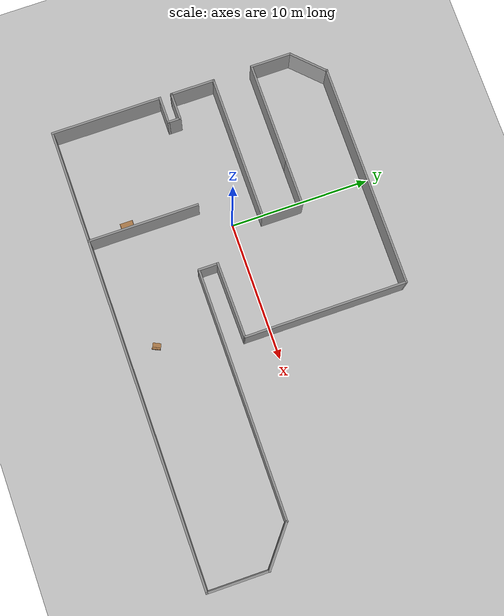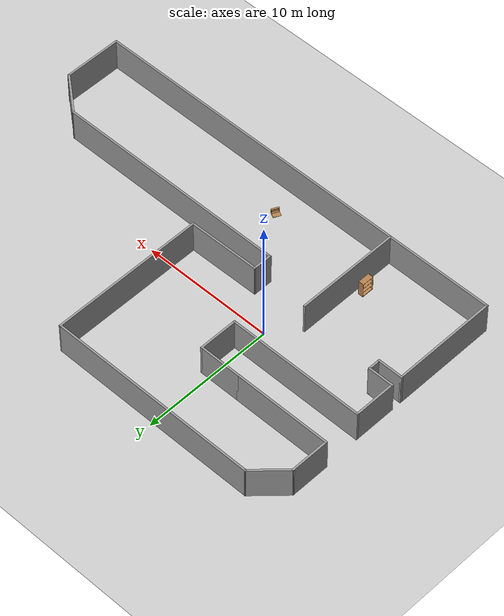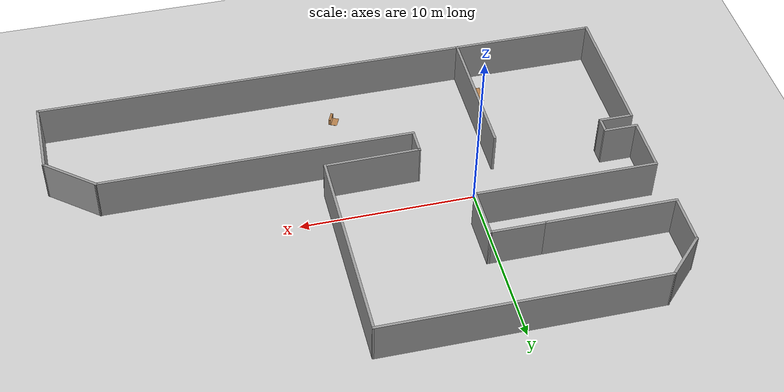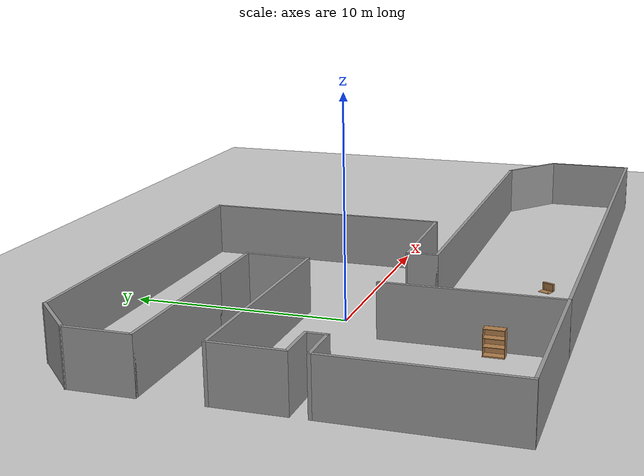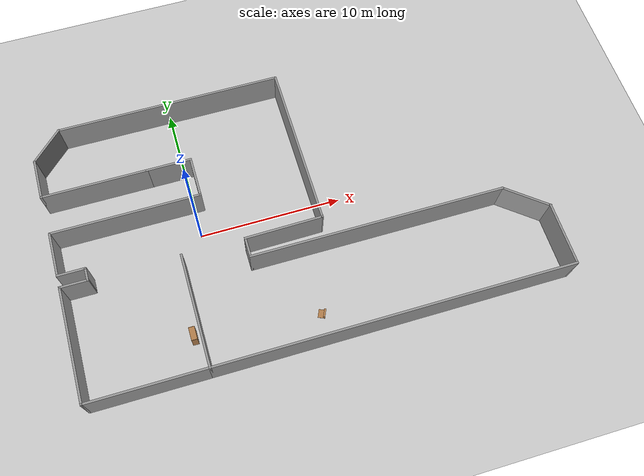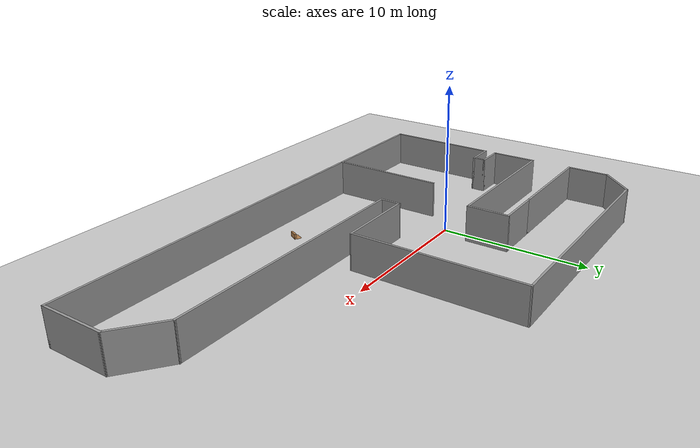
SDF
<sdf version="1.7">
 <world name="default">
  <light name="sun" type="directional">
   <pose>0 0 10 0 -0 0</pose>
   <diffuse>0.8 0.8 0.8 1</diffuse>
   <specular>0.2 0.2 0.2 1</specular>
   <attenuation>
    <range>1000</range>
    <constant>0.9</constant>
    <linear>0.01</linear>
    <quadratic>0.001</quadratic>
   </attenuation>
   <direction>-0.5 0.1 -0.9</direction>
   <spot><inner_angle>0</inner_angle><outer_angle>0</outer_angle><falloff>0</falloff></spot>
  </light>
  <model name="ground_plane">
   <static>1</static>
   <link name="link">
    <collision name="collision">
     <geometry><plane><normal>0 0 1</normal><size>100 100</size></plane></geometry>
     <surface>
      <contact><collide_bitmask>65535</collide_bitmask></contact>
      <friction><ode><mu>100</mu><mu2>50</mu2></ode></friction>
     </surface>
    </collision>
    <visual name="visual">
     <cast_shadows>0</cast_shadows>
     <geometry><plane><normal>0 0 1</normal><size>100 100</size></plane></geometry>
     <material>
      <script><uri>file://media/materials/scripts/gazebo.material</uri><name>Gazebo/Grey</name></script>
     </material>
    </visual>
   </link>
  </model>
  <gravity>0 0 -9.8</gravity>
  <magnetic_field>6e-06 2.3e-05 -4.2e-05</magnetic_field>
  <atmosphere type="adiabatic"/>
  <physics type="ode">
   <max_step_size>0.001</max_step_size>
   <real_time_factor>1</real_time_factor>
   <real_time_update_rate>1000</real_time_update_rate>
  </physics>
  <scene><ambient>0.4 0.4 0.4 1</ambient><background>0.7 0.7 0.7 1</background><shadows>1</shadows></scene>
  <audio><device>default</device></audio>
  <spherical_coordinates>
   <surface_model>EARTH_WGS84</surface_model>
   <latitude_deg>0</latitude_deg>
   <longitude_deg>0</longitude_deg>
   <elevation>0</elevation>
   <heading_deg>0</heading_deg>
  </spherical_coordinates>
  <model name="my_bot">
   <link name="base_link">
    <inertial>
     <pose>0.058676 0 0.043869 0 -0 0</pose>
     <mass>0.701</mass>
     <inertia>
      <ixx>0.00324724</ixx>
      <ixy>0</ixy>
      <ixz>0.000339625</ixz>
      <iyy>0.00355537</iyy>
      <iyz>0</iyz>
      <izz>0.00467089</izz>
     </inertia>
    </inertial>
    <collision name="base_link_fixed_joint_lump__chassis_collision">
     <pose>0.05251 0 0.037505 0 -0 0</pose>
     <geometry><box><size>0.225 0.225 0.07501</size></box></geometry>
    </collision>
    <collision name="base_link_fixed_joint_lump__caster_wheel_collision_1">
     <pose>0.10876 0 0 0 -0 0</pose>
     <geometry><sphere><radius>0.04</radius></sphere></geometry>
     <surface><friction><ode><mu>0.001</mu><mu2>0.001</mu2></ode></friction></surface>
    </collision>
    <collision name="base_link_fixed_joint_lump__laser_frame_collision_2">
     <pose>0.04001 0 0.12 0 -0 0</pose>
     <geometry><cylinder><length>0.025</length><radius>0.04</radius></cylinder></geometry>
    </collision>
    <collision name="base_link_fixed_joint_lump__imu_link_collision_3">
     <geometry><box><size>0.001 0.001 0.001</size></box></geometry>
    </collision>
    <visual name="base_link_fixed_joint_lump__chassis_visual">
     <pose>0.05251 0 0.037505 0 -0 0</pose>
     <geometry><box><size>0.225 0.225 0.07501</size></box></geometry>
     <material>
      <script><name>Gazebo/Blue</name><uri>file://media/materials/scripts/gazebo.material</uri></script>
     </material>
    </visual>
    <visual name="base_link_fixed_joint_lump__camera_link_visual_1">
     <pose>0.14001 0 0.10285 0 -0 0</pose>
     <geometry><box><size>0.005 0.025 0.025</size></box></geometry>
     <material>
      <script><name>Gazebo/Green</name><uri>file://media/materials/scripts/gazebo.material</uri></script>
     </material>
    </visual>
    <visual name="base_link_fixed_joint_lump__caster_wheel_visual_2">
     <pose>0.10876 0 0 0 -0 0</pose>
     <geometry><sphere><radius>0.04</radius></sphere></geometry>
     <material>
      <script><name>Gazebo/White</name><uri>file://media/materials/scripts/gazebo.material</uri></script>
     </material>
    </visual>
    <visual name="base_link_fixed_joint_lump__laser_frame_visual_3">
     <pose>0.04001 0 0.12 0 -0 0</pose>
     <geometry><cylinder><length>0.025</length><radius>0.04</radius></cylinder></geometry>
     <material>
      <script><name>Gazebo/Red</name><uri>file://media/materials/scripts/gazebo.material</uri></script>
     </material>
    </visual>
    <visual name="base_link_fixed_joint_lump__imu_link_visual_4">
     <geometry><box><size>0.001 0.001 0.001</size></box></geometry>
    </visual>
    <sensor name="camera" type="camera">
     <visualize>1</visualize>
     <update_rate>10</update_rate>
     <camera>
      <horizontal_fov>1.089</horizontal_fov>
      <image><format>R8G8B8</format><width>640</width><height>480</height></image>
      <clip><near>0.05</near><far>8</far></clip>
     </camera>
     <plugin name="camera_controller" filename="libgazebo_ros_camera.so">
      <frame_name>camera_link_optical</frame_name>
     </plugin>
     <pose>0.14001 0 0.10285 0 -0 0</pose>
    </sensor>
    <sensor name="laser" type="ray">
     <visualize>0</visualize>
     <update_rate>10</update_rate>
     <ray>
      <scan>
       <horizontal>
        <samples>360</samples>
        <min_angle>-3.14</min_angle>
        <max_angle>3.14</max_angle>
        <resolution>1</resolution>
       </horizontal>
       <vertical><samples>1</samples><min_angle>0</min_angle><max_angle>0</max_angle></vertical>
      </scan>
      <range><min>0.3</min><max>12</max></range>
     </ray>
     <plugin name="laser_controller" filename="libgazebo_ros_ray_sensor.so">
      <ros><argument>~/out:=scan</argument></ros>
      <output_type>sensor_msgs/LaserScan</output_type>
      <frame_name>laser_frame</frame_name>
     </plugin>
     <pose>0.04001 0 0.12 0 -0 0</pose>
    </sensor>
    <sensor name="imu_sensor" type="imu">
     <plugin name="imu_plugin" filename="libgazebo_ros_imu_sensor.so">
      <initial_orientation_as_reference>0</initial_orientation_as_reference>
      <frame_name>imu_link</frame_name>
      <ros><namespace>/imu</namespace><remapping>~/out:=data</remapping></ros>
     </plugin>
     <always_on>1</always_on>
     <update_rate>100</update_rate>
     <visualize>1</visualize>
     <imu>
      <angular_velocity>
       <x>
        <noise type="gaussian">
         <mean>0</mean>
         <stddev>0.0002</stddev>
         <bias_mean>7.5e-06</bias_mean>
         <bias_stddev>8e-07</bias_stddev>
        </noise>
       </x>
       <y>
        <noise type="gaussian">
         <mean>0</mean>
         <stddev>0.0002</stddev>
         <bias_mean>7.5e-06</bias_mean>
         <bias_stddev>8e-07</bias_stddev>
        </noise>
       </y>
       <z>
        <noise type="gaussian">
         <mean>0</mean>
         <stddev>0.0002</stddev>
         <bias_mean>7.5e-06</bias_mean>
         <bias_stddev>8e-07</bias_stddev>
        </noise>
       </z>
      </angular_velocity>
      <linear_acceleration>
       <x>
        <noise type="gaussian">
         <mean>0</mean>
         <stddev>0.017</stddev>
         <bias_mean>0.1</bias_mean>
         <bias_stddev>0.001</bias_stddev>
        </noise>
       </x>
       <y>
        <noise type="gaussian">
         <mean>0</mean>
         <stddev>0.017</stddev>
         <bias_mean>0.1</bias_mean>
         <bias_stddev>0.001</bias_stddev>
        </noise>
       </y>
       <z>
        <noise type="gaussian">
         <mean>0</mean>
         <stddev>0.017</stddev>
         <bias_mean>0.1</bias_mean>
         <bias_stddev>0.001</bias_stddev>
        </noise>
       </z>
      </linear_acceleration>
     </imu>
    </sensor>
   </link>
   <joint name="left_wheel_joint" type="revolute">
    <pose relative_to="base_link">0 0.11975 0 -1.5708 0 0</pose>
    <parent>base_link</parent>
    <child>left_wheel</child>
    <axis>
     <xyz>0 0 1</xyz>
     <limit><lower>-1e+16</lower><upper>1e+16</upper></limit>
     <dynamics><spring_reference>0</spring_reference><spring_stiffness>0</spring_stiffness></dynamics>
    </axis>
   </joint>
   <link name="left_wheel">
    <pose relative_to="left_wheel_joint">0 0 0 0 -0 0</pose>
    <inertial>
     <mass>0.1</mass>
     <inertia>
      <ixx>4.08333e-05</ixx>
      <ixy>0</ixy>
      <ixz>0</ixz>
      <iyy>4.08333e-05</iyy>
      <iyz>0</iyz>
      <izz>8e-05</izz>
     </inertia>
    </inertial>
    <collision name="left_wheel_collision">
     <geometry><cylinder><length>0.01</length><radius>0.04</radius></cylinder></geometry>
    </collision>
    <visual name="left_wheel_visual">
     <geometry><cylinder><length>0.01</length><radius>0.04</radius></cylinder></geometry>
     <material>
      <script><name>Gazebo/Black</name><uri>file://media/materials/scripts/gazebo.material</uri></script>
     </material>
    </visual>
   </link>
   <joint name="right_wheel_joint" type="revolute">
    <pose relative_to="base_link">0 -0.11975 0 1.5708 -0 0</pose>
    <parent>base_link</parent>
    <child>right_wheel</child>
    <axis>
     <xyz>0 0 -1</xyz>
     <limit><lower>-1e+16</lower><upper>1e+16</upper></limit>
     <dynamics><spring_reference>0</spring_reference><spring_stiffness>0</spring_stiffness></dynamics>
    </axis>
   </joint>
   <link name="right_wheel">
    <pose relative_to="right_wheel_joint">0 0 0 0 -0 0</pose>
    <inertial>
     <mass>0.1</mass>
     <inertia>
      <ixx>4.08333e-05</ixx>
      <ixy>0</ixy>
      <ixz>0</ixz>
      <iyy>4.08333e-05</iyy>
      <iyz>0</iyz>
      <izz>8e-05</izz>
     </inertia>
    </inertial>
    <collision name="right_wheel_collision">
     <geometry><cylinder><length>0.01</length><radius>0.04</radius></cylinder></geometry>
    </collision>
    <visual name="right_wheel_visual">
     <geometry><cylinder><length>0.01</length><radius>0.04</radius></cylinder></geometry>
     <material>
      <script><name>Gazebo/Black</name><uri>file://media/materials/scripts/gazebo.material</uri></script>
     </material>
    </visual>
   </link>
   <static>0</static>
   <plugin name="gazebo_ros2_control" filename="libgazebo_ros2_control.so">
    <parameters>/home/praveenrav702/comp_ws/install/autonomous_diffdrive_robot/share/autonomous_diffdrive_robot/config/my_controllers.yaml</parameters>
    <parameters>/home/praveenrav702/comp_ws/install/autonomous_diffdrive_robot/share/autonomous_diffdrive_robot/config/gaz_ros2_ctl_use_sim.yaml</parameters>
   </plugin>
   <pose>0.001982 0.00016 0.04 0 -0 0.018036</pose>
  </model>
  <model name="Simulated_Room">
   <pose>6.69498 -0.068758 0 0 -0 0</pose>
   <link name="Wall_16">
    <collision name="Wall_16_Collision">
     <geometry><box><size>5.53474 0.15 2.5</size></box></geometry>
     <pose>0 0 1.25 0 -0 0</pose>
    </collision>
    <visual name="Wall_16_Visual">
     <pose>0 0 1.25 0 -0 0</pose>
     <geometry><box><size>5.53474 0.15 2.5</size></box></geometry>
     <material>
      <script><uri>file://media/materials/scripts/gazebo.material</uri><name>Gazebo/Grey</name></script>
      <ambient>1 1 1 1</ambient>
     </material>
     <meta><layer>0</layer></meta>
    </visual>
    <pose>-1.27102 -1.91769 0 0 -0 0.012742</pose>
   </link>
   <link name="Wall_37">
    <collision name="Wall_37_Collision">
     <geometry><box><size>1.5 0.15 2.5</size></box></geometry>
     <pose>0 0 1.25 0 -0 0</pose>
    </collision>
    <visual name="Wall_37_Visual">
     <pose>0 0 1.25 0 -0 0</pose>
     <geometry><box><size>1.5 0.15 2.5</size></box></geometry>
     <material>
      <script><uri>file://media/materials/scripts/gazebo.material</uri><name>Gazebo/Grey</name></script>
      <ambient>1 1 1 1</ambient>
     </material>
     <meta><layer>0</layer></meta>
    </visual>
    <pose>-3.96317 -2.627 0 0 -0 -1.5708</pose>
   </link>
   <link name="Wall_38">
    <collision name="Wall_38_Collision">
     <geometry><box><size>18 0.15 2.5</size></box></geometry>
     <pose>0 0 1.25 0 -0 0</pose>
    </collision>
    <visual name="Wall_38_Visual">
     <pose>0 0 1.25 0 -0 0</pose>
     <geometry><box><size>18 0.15 2.5</size></box></geometry>
     <material>
      <script><uri>file://media/materials/scripts/gazebo.material</uri><name>Gazebo/Grey</name></script>
      <ambient>1 1 1 1</ambient>
     </material>
     <meta><layer>0</layer></meta>
    </visual>
    <pose>4.96183 -3.302 0 0 -0 0</pose>
   </link>
   <link name="Wall_46">
    <collision name="Wall_46_Collision">
     <geometry><box><size>11.75 0.15 2.5</size></box></geometry>
     <pose>0 0 1.25 0 -0 0</pose>
    </collision>
    <visual name="Wall_46_Visual">
     <pose>0 0 1.25 0 -0 0</pose>
     <geometry><box><size>11.75 0.15 2.5</size></box></geometry>
     <material>
      <script><uri>file://media/materials/scripts/gazebo.material</uri><name>Gazebo/Grey</name></script>
      <ambient>1 1 1 1</ambient>
     </material>
     <meta><layer>0</layer></meta>
    </visual>
    <pose>1.42113 3.91661 0 0 -0 1.5708</pose>
   </link>
   <link name="Wall_47">
    <collision name="Wall_47_Collision">
     <geometry><box><size>16.0806 0.15 2.5</size></box></geometry>
     <pose>0 0 1.25 0 -0 0</pose>
    </collision>
    <visual name="Wall_47_Visual">
     <pose>0 0 1.25 0 -0 0</pose>
     <geometry><box><size>16.0806 0.15 2.5</size></box></geometry>
     <material>
      <script><uri>file://media/materials/scripts/gazebo.material</uri><name>Gazebo/Grey</name></script>
      <ambient>1 1 1 1</ambient>
     </material>
     <meta><layer>0</layer></meta>
    </visual>
    <pose>-6.54415 9.72935 0 0 -0 3.13999</pose>
   </link>
   <link name="Wall_51">
    <collision name="Wall_51_Collision">
     <geometry><box><size>3 0.15 2.5</size></box></geometry>
     <pose>0 0 1.25 0 -0 0</pose>
    </collision>
    <visual name="Wall_51_Visual">
     <pose>0 0 1.25 0 -0 0</pose>
     <geometry><box><size>3 0.15 2.5</size></box></geometry>
     <material>
      <script><uri>file://media/materials/scripts/gazebo.material</uri><name>Gazebo/Grey</name></script>
      <ambient>1 1 1 1</ambient>
     </material>
     <meta><layer>0</layer></meta>
    </visual>
    <pose>-15.5171 8.73447 0 0 -0 -2.35619</pose>
   </link>
   <link name="Wall_52">
    <collision name="Wall_52_Collision">
     <geometry><box><size>3 0.15 2.5</size></box></geometry>
     <pose>0 0 1.25 0 -0 0</pose>
    </collision>
    <visual name="Wall_52_Visual">
     <pose>0 0 1.25 0 -0 0</pose>
     <geometry><box><size>3 0.15 2.5</size></box></geometry>
     <material>
      <script><uri>file://media/materials/scripts/gazebo.material</uri><name>Gazebo/Grey</name></script>
      <ambient>1 1 1 1</ambient>
     </material>
     <meta><layer>0</layer></meta>
    </visual>
    <pose>-16.5247 6.30184 0 0 -0 -1.5708</pose>
   </link>
   <link name="Wall_53">
    <collision name="Wall_53_Collision">
     <geometry><box><size>7.5 0.15 2.5</size></box></geometry>
     <pose>0 0 1.25 0 -0 0</pose>
    </collision>
    <visual name="Wall_53_Visual">
     <pose>0 0 1.25 0 -0 0</pose>
     <geometry><box><size>7.5 0.15 2.5</size></box></geometry>
     <material>
      <script><uri>file://media/materials/scripts/gazebo.material</uri><name>Gazebo/Grey</name></script>
      <ambient>1 1 1 1</ambient>
     </material>
     <meta><layer>0</layer></meta>
    </visual>
    <pose>-12.8497 4.87684 0 0 -0 0</pose>
   </link>
   <link name="Wall_54">
    <collision name="Wall_54_Collision">
     <geometry><box><size>3.25 0.15 2.5</size></box></geometry>
     <pose>0 0 1.25 0 -0 0</pose>
    </collision>
    <visual name="Wall_54_Visual">
     <pose>0 0 1.25 0 -0 0</pose>
     <geometry><box><size>3.25 0.15 2.5</size></box></geometry>
     <material>
      <script><uri>file://media/materials/scripts/gazebo.material</uri><name>Gazebo/Grey</name></script>
      <ambient>1 1 1 1</ambient>
     </material>
     <meta><layer>0</layer></meta>
    </visual>
    <pose>-7.62469 4.87684 0 0 -0 0</pose>
   </link>
   <link name="Wall_71">
    <collision name="Wall_71_Collision">
     <geometry><box><size>3 0.15 2.5</size></box></geometry>
     <pose>0 0 1.25 0 -0 0</pose>
    </collision>
    <visual name="Wall_71_Visual">
     <pose>0 0 1.25 0 -0 0</pose>
     <geometry><box><size>3 0.15 2.5</size></box></geometry>
     <material>
      <script><uri>file://media/materials/scripts/gazebo.material</uri><name>Gazebo/Grey</name></script>
      <ambient>1 1 1 1</ambient>
     </material>
     <meta><layer>0</layer></meta>
    </visual>
    <pose>-6.07469 3.45184 0 0 -0 -1.5708</pose>
   </link>
   <link name="Wall_72">
    <collision name="Wall_72_Collision">
     <geometry><box><size>10.5 0.15 2.5</size></box></geometry>
     <pose>0 0 1.25 0 -0 0</pose>
    </collision>
    <visual name="Wall_72_Visual">
     <pose>0 0 1.25 0 -0 0</pose>
     <geometry><box><size>10.5 0.15 2.5</size></box></geometry>
     <material>
      <script><uri>file://media/materials/scripts/gazebo.material</uri><name>Gazebo/Grey</name></script>
      <ambient>1 1 1 1</ambient>
     </material>
     <meta><layer>0</layer></meta>
    </visual>
    <pose>-11.2497 2.02684 0 0 -0 3.14159</pose>
   </link>
   <link name="Wall_73">
    <collision name="Wall_73_Collision">
     <geometry><box><size>3.25 0.15 2.5</size></box></geometry>
     <pose>0 0 1.25 0 -0 0</pose>
    </collision>
    <visual name="Wall_73_Visual">
     <pose>0 0 1.25 0 -0 0</pose>
     <geometry><box><size>3.25 0.15 2.5</size></box></geometry>
     <material>
      <script><uri>file://media/materials/scripts/gazebo.material</uri><name>Gazebo/Grey</name></script>
      <ambient>1 1 1 1</ambient>
     </material>
     <meta><layer>0</layer></meta>
    </visual>
    <pose>-16.4247 0.47684 0 0 -0 -1.5708</pose>
   </link>
   <link name="Wall_74">
    <collision name="Wall_74_Collision">
     <geometry><box><size>2 0.15 2.5</size></box></geometry>
     <pose>0 0 1.25 0 -0 0</pose>
    </collision>
    <visual name="Wall_74_Visual">
     <pose>0 0 1.25 0 -0 0</pose>
     <geometry><box><size>2 0.15 2.5</size></box></geometry>
     <material>
      <script><uri>file://media/materials/scripts/gazebo.material</uri><name>Gazebo/Grey</name></script>
      <ambient>1 1 1 1</ambient>
     </material>
     <meta><layer>0</layer></meta>
    </visual>
    <pose>-15.4997 -1.07316 0 0 -0 0</pose>
   </link>
   <link name="Wall_75">
    <collision name="Wall_75_Collision">
     <geometry><box><size>1 0.15 2.5</size></box></geometry>
     <pose>0 0 1.25 0 -0 0</pose>
    </collision>
    <visual name="Wall_75_Visual">
     <pose>0 0 1.25 0 -0 0</pose>
     <geometry><box><size>1 0.15 2.5</size></box></geometry>
     <material>
      <script><uri>file://media/materials/scripts/gazebo.material</uri><name>Gazebo/Grey</name></script>
      <ambient>1 1 1 1</ambient>
     </material>
     <meta><layer>0</layer></meta>
    </visual>
    <pose>-14.5747 -1.49816 0 0 -0 -1.5708</pose>
   </link>
   <link name="Wall_76">
    <collision name="Wall_76_Collision">
     <geometry><box><size>2 0.15 2.5</size></box></geometry>
     <pose>0 0 1.25 0 -0 0</pose>
    </collision>
    <visual name="Wall_76_Visual">
     <pose>0 0 1.25 0 -0 0</pose>
     <geometry><box><size>2 0.15 2.5</size></box></geometry>
     <material>
      <script><uri>file://media/materials/scripts/gazebo.material</uri><name>Gazebo/Grey</name></script>
      <ambient>1 1 1 1</ambient>
     </material>
     <meta><layer>0</layer></meta>
    </visual>
    <pose>-15.4997 -1.92316 0 0 -0 3.14159</pose>
   </link>
   <link name="Wall_77">
    <collision name="Wall_77_Collision">
     <geometry><box><size>8 0.15 2.5</size></box></geometry>
     <pose>0 0 1.25 0 -0 0</pose>
    </collision>
    <visual name="Wall_77_Visual">
     <pose>0 0 1.25 0 -0 0</pose>
     <geometry><box><size>8 0.15 2.5</size></box></geometry>
     <material>
      <script><uri>file://media/materials/scripts/gazebo.material</uri><name>Gazebo/Grey</name></script>
      <ambient>1 1 1 1</ambient>
     </material>
     <meta><layer>0</layer></meta>
    </visual>
    <pose>-16.4247 -5.84816 0 0 -0 -1.5708</pose>
   </link>
   <link name="Wall_78">
    <collision name="Wall_78_Collision">
     <geometry><box><size>8.25 0.15 2.5</size></box></geometry>
     <pose>0 0 1.25 0 -0 0</pose>
    </collision>
    <visual name="Wall_78_Visual">
     <pose>0 0 1.25 0 -0 0</pose>
     <geometry><box><size>8.25 0.15 2.5</size></box></geometry>
     <material>
      <script><uri>file://media/materials/scripts/gazebo.material</uri><name>Gazebo/Grey</name></script>
      <ambient>1 1 1 1</ambient>
     </material>
     <meta><layer>0</layer></meta>
    </visual>
    <pose>-12.3747 -9.77316 0 0 -0 0</pose>
   </link>
   <link name="Wall_79">
    <collision name="Wall_79_Collision">
     <geometry><box><size>8 0.15 2.5</size></box></geometry>
     <pose>0 0 1.25 0 -0 0</pose>
    </collision>
    <visual name="Wall_79_Visual">
     <pose>0 0 1.25 0 -0 0</pose>
     <geometry><box><size>8 0.15 2.5</size></box></geometry>
     <material>
      <script><uri>file://media/materials/scripts/gazebo.material</uri><name>Gazebo/Grey</name></script>
      <ambient>1 1 1 1</ambient>
     </material>
     <meta><layer>0</layer></meta>
    </visual>
    <pose>-8.32469 -5.84816 0 0 -0 1.5708</pose>
   </link>
   <link name="Wall_88">
    <collision name="Wall_88_Collision">
     <geometry><box><size>25 0.15 2.5</size></box></geometry>
     <pose>0 0 1.25 0 -0 0</pose>
    </collision>
    <visual name="Wall_88_Visual">
     <pose>0 0 1.25 0 -0 0</pose>
     <geometry><box><size>25 0.15 2.5</size></box></geometry>
     <material>
      <script><uri>file://media/materials/scripts/gazebo.material</uri><name>Gazebo/Grey</name></script>
      <ambient>1 1 1 1</ambient>
     </material>
     <meta><layer>0</layer></meta>
    </visual>
    <pose>4.10031 -9.77316 0 0 -0 0</pose>
   </link>
   <link name="Wall_91">
    <collision name="Wall_91_Collision">
     <geometry><box><size>4.5 0.15 2.5</size></box></geometry>
     <pose>0 0 1.25 0 -0 0</pose>
    </collision>
    <visual name="Wall_91_Visual">
     <pose>0 0 1.25 0 -0 0</pose>
     <geometry><box><size>4.5 0.15 2.5</size></box></geometry>
     <material>
      <script><uri>file://media/materials/scripts/gazebo.material</uri><name>Gazebo/Grey</name></script>
      <ambient>1 1 1 1</ambient>
     </material>
     <meta><layer>0</layer></meta>
    </visual>
    <pose>16.5253 -7.59816 0 0 -0 1.5708</pose>
   </link>
   <link name="Wall_92">
    <collision name="Wall_92_Collision">
     <geometry><box><size>3.5354 0.15 2.5</size></box></geometry>
     <pose>0 0 1.25 0 -0 0</pose>
    </collision>
    <visual name="Wall_92_Visual">
     <pose>0 0 1.25 0 -0 0</pose>
     <geometry><box><size>3.5354 0.15 2.5</size></box></geometry>
     <material>
      <script><uri>file://media/materials/scripts/gazebo.material</uri><name>Gazebo/Grey</name></script>
      <ambient>1 1 1 1</ambient>
     </material>
     <meta><layer>0</layer></meta>
    </visual>
    <pose>15.2061 -4.36258 0 0 -0 2.46446</pose>
   </link>
   <static>1</static>
  </model>
  <model name="Bookshelf">
   <static>1</static>
   <link name="link">
    <inertial><mass>1</mass></inertial>
    <collision name="back">
     <pose>0 0.005 0.6 0 -0 0</pose>
     <geometry><box><size>0.9 0.01 1.2</size></box></geometry>
    </collision>
    <visual name="visual1">
     <pose>0 0.005 0.6 0 -0 0</pose>
     <geometry><box><size>0.9 0.01 1.2</size></box></geometry>
     <material>
      <diffuse>1 1 1 1</diffuse>
      <script><uri>file://media/materials/scripts/gazebo.material</uri><name>Gazebo/Wood</name></script>
      <pbr>
       <metal>
        <albedo_map>https://fuel.ignitionrobotics.org/1.0/openrobotics/models/bookshelf/3/files/bookshelf_diffuse.jpg</albedo_map>
       </metal>
      </pbr>
     </material>
    </visual>
    <collision name="left_side">
     <pose>0.45 -0.195 0.6 0 -0 0</pose>
     <geometry><box><size>0.02 0.4 1.2</size></box></geometry>
    </collision>
    <visual name="visual2">
     <pose>0.45 -0.195 0.6 0 -0 0</pose>
     <geometry><box><size>0.02 0.4 1.2</size></box></geometry>
     <material>
      <diffuse>1 1 1 1</diffuse>
      <script><uri>file://media/materials/scripts/gazebo.material</uri><name>Gazebo/Wood</name></script>
      <pbr>
       <metal>
        <albedo_map>https://fuel.ignitionrobotics.org/1.0/openrobotics/models/bookshelf/3/files/bookshelf_diffuse.jpg</albedo_map>
       </metal>
      </pbr>
     </material>
    </visual>
    <collision name="right_side">
     <pose>-0.45 -0.195 0.6 0 -0 0</pose>
     <geometry><box><size>0.02 0.4 1.2</size></box></geometry>
    </collision>
    <visual name="visual3">
     <pose>-0.45 -0.195 0.6 0 -0 0</pose>
     <geometry><box><size>0.02 0.4 1.2</size></box></geometry>
     <material>
      <diffuse>1 1 1 1</diffuse>
      <script><uri>file://media/materials/scripts/gazebo.material</uri><name>Gazebo/Wood</name></script>
      <pbr>
       <metal>
        <albedo_map>https://fuel.ignitionrobotics.org/1.0/openrobotics/models/bookshelf/3/files/bookshelf_diffuse.jpg</albedo_map>
       </metal>
      </pbr>
     </material>
    </visual>
    <collision name="bottom">
     <pose>0 -0.195 0.03 0 -0 0</pose>
     <geometry><box><size>0.88 0.4 0.06</size></box></geometry>
    </collision>
    <visual name="visual4">
     <pose>0 -0.195 0.03 0 -0 0</pose>
     <geometry><box><size>0.88 0.4 0.06</size></box></geometry>
     <material>
      <diffuse>1 1 1 1</diffuse>
      <script><uri>file://media/materials/scripts/gazebo.material</uri><name>Gazebo/Wood</name></script>
      <pbr>
       <metal>
        <albedo_map>https://fuel.ignitionrobotics.org/1.0/openrobotics/models/bookshelf/3/files/bookshelf_diffuse.jpg</albedo_map>
       </metal>
      </pbr>
     </material>
    </visual>
    <collision name="top">
     <pose>0 -0.195 1.19 0 -0 0</pose>
     <geometry><box><size>0.88 0.4 0.02</size></box></geometry>
    </collision>
    <visual name="visual5">
     <pose>0 -0.195 1.19 0 -0 0</pose>
     <geometry><box><size>0.88 0.4 0.02</size></box></geometry>
     <material>
      <diffuse>1 1 1 1</diffuse>
      <script><uri>file://media/materials/scripts/gazebo.material</uri><name>Gazebo/Wood</name></script>
      <pbr>
       <metal>
        <albedo_map>https://fuel.ignitionrobotics.org/1.0/openrobotics/models/bookshelf/3/files/bookshelf_diffuse.jpg</albedo_map>
       </metal>
      </pbr>
     </material>
    </visual>
    <collision name="low_shelf">
     <pose>0 -0.195 0.43 0 -0 0</pose>
     <geometry><box><size>0.88 0.4 0.02</size></box></geometry>
    </collision>
    <visual name="visual6">
     <pose>0 -0.195 0.43 0 -0 0</pose>
     <geometry><box><size>0.88 0.4 0.02</size></box></geometry>
     <material>
      <diffuse>1 1 1 1</diffuse>
      <script><uri>file://media/materials/scripts/gazebo.material</uri><name>Gazebo/Wood</name></script>
      <pbr>
       <metal>
        <albedo_map>https://fuel.ignitionrobotics.org/1.0/openrobotics/models/bookshelf/3/files/bookshelf_diffuse.jpg</albedo_map>
       </metal>
      </pbr>
     </material>
    </visual>
    <collision name="high_shelf">
     <pose>0 -0.195 0.8 0 -0 0</pose>
     <geometry><box><size>0.88 0.4 0.02</size></box></geometry>
    </collision>
    <visual name="visual7">
     <pose>0 -0.195 0.8 0 -0 0</pose>
     <geometry><box><size>0.88 0.4 0.02</size></box></geometry>
     <material>
      <diffuse>1 1 1 1</diffuse>
      <script><uri>file://media/materials/scripts/gazebo.material</uri><name>Gazebo/Wood</name></script>
      <pbr>
       <metal>
        <albedo_map>https://fuel.ignitionrobotics.org/1.0/openrobotics/models/bookshelf/3/files/bookshelf_diffuse.jpg</albedo_map>
       </metal>
      </pbr>
     </material>
    </visual>
   </link>
   <pose>-2 -7 0 0 -0 -1.57079</pose>
  </model>
  <model name="wooden_case_metal_peg">
   <frame name="wooden_case::__model__" attached_to="wooden_case::base">
    <pose relative_to="__model__">0 0 0 0 -0 0</pose>
   </frame>
   <link name="wooden_case::base">
    <pose relative_to="wooden_case::__model__">0 0 0.024 0 -0 0</pose>
    <inertial>
     <pose>-0.022184 0 0.171592 0 -0 0</pose>
     <mass>3.96264</mass>
     <inertia>
      <ixx>0.213536</ixx>
      <ixy>0</ixy>
      <ixz>0.000779377</ixz>
      <iyy>0.0708943</iyy>
      <iyz>0</iyz>
      <izz>0.154604</izz>
     </inertia>
    </inertial>
    <collision name="collision_back">
     <pose>-0.053975 0 0.1778 0 -0 0</pose>
     <geometry><box><size>0.01905 0.5461 0.3175</size></box></geometry>
     <surface>
      <contact>
       <poissons_ratio>0.347</poissons_ratio>
       <elastic_modulus>8.8e+09</elastic_modulus>
       <ode><kp>100000</kp><kd>100</kd><max_vel>100</max_vel><min_depth>0.001</min_depth></ode>
      </contact>
      <friction>
       <torsional>
        <coefficient>1</coefficient>
        <use_patch_radius>0</use_patch_radius>
        <surface_radius>0.01</surface_radius>
       </torsional>
      </friction>
     </surface>
    </collision>
    <visual name="visual_back">
     <pose>-0.053975 0 0.1778 0 -0 0</pose>
     <geometry><box><size>0.01905 0.5461 0.3175</size></box></geometry>
     <material>
      <script><uri>file://media/materials/scripts/gazebo.material</uri><name>Gazebo/Wood</name></script>
     </material>
    </visual>
    <collision name="collision_bottom">
     <pose>0 0 0.009525 0 -0 0</pose>
     <geometry><box><size>0.127 0.5842 0.01905</size></box></geometry>
     <surface>
      <contact>
       <poissons_ratio>0.347</poissons_ratio>
       <elastic_modulus>8.8e+09</elastic_modulus>
       <ode><kp>100000</kp><kd>100</kd><max_vel>100</max_vel><min_depth>0.001</min_depth></ode>
      </contact>
      <friction>
       <torsional>
        <coefficient>1</coefficient>
        <use_patch_radius>0</use_patch_radius>
        <surface_radius>0.01</surface_radius>
       </torsional>
      </friction>
     </surface>
    </collision>
    <visual name="visual_bottom">
     <pose>0 0 0.009525 0 -0 0</pose>
     <geometry><box><size>0.127 0.5842 0.01905</size></box></geometry>
     <material>
      <script><uri>file://media/materials/scripts/gazebo.material</uri><name>Gazebo/Wood</name></script>
     </material>
    </visual>
    <collision name="collision_top">
     <pose>0 0 0.346075 0 -0 0</pose>
     <geometry><box><size>0.127 0.5842 0.01905</size></box></geometry>
     <surface>
      <contact>
       <poissons_ratio>0.347</poissons_ratio>
       <elastic_modulus>8.8e+09</elastic_modulus>
       <ode><kp>100000</kp><kd>100</kd><max_vel>100</max_vel><min_depth>0.001</min_depth></ode>
      </contact>
      <friction>
       <torsional>
        <coefficient>1</coefficient>
        <use_patch_radius>0</use_patch_radius>
        <surface_radius>0.01</surface_radius>
       </torsional>
      </friction>
     </surface>
    </collision>
    <visual name="visual_top">
     <pose>0 0 0.346075 0 -0 0</pose>
     <geometry><box><size>0.127 0.5842 0.01905</size></box></geometry>
     <material>
      <script><uri>file://media/materials/scripts/gazebo.material</uri><name>Gazebo/Wood</name></script>
     </material>
    </visual>
    <collision name="collision_left">
     <pose>0 -0.282575 0.1778 0 -0 0</pose>
     <geometry><box><size>0.127 0.01905 0.3175</size></box></geometry>
     <surface>
      <contact>
       <poissons_ratio>0.347</poissons_ratio>
       <elastic_modulus>8.8e+09</elastic_modulus>
       <ode><kp>100000</kp><kd>100</kd><max_vel>100</max_vel><min_depth>0.001</min_depth></ode>
      </contact>
      <friction>
       <torsional>
        <coefficient>1</coefficient>
        <use_patch_radius>0</use_patch_radius>
        <surface_radius>0.01</surface_radius>
       </torsional>
      </friction>
     </surface>
    </collision>
    <visual name="visual_left">
     <pose>0 -0.282575 0.1778 0 -0 0</pose>
     <geometry><box><size>0.127 0.01905 0.3175</size></box></geometry>
     <material>
      <script><uri>file://media/materials/scripts/gazebo.material</uri><name>Gazebo/Wood</name></script>
     </material>
    </visual>
    <collision name="collision_right">
     <pose>0 0.282575 0.1778 0 -0 0</pose>
     <geometry><box><size>0.127 0.01905 0.3175</size></box></geometry>
     <surface>
      <contact>
       <poissons_ratio>0.347</poissons_ratio>
       <elastic_modulus>8.8e+09</elastic_modulus>
       <ode><kp>100000</kp><kd>100</kd><max_vel>100</max_vel><min_depth>0.001</min_depth></ode>
      </contact>
      <friction>
       <torsional>
        <coefficient>1</coefficient>
        <use_patch_radius>0</use_patch_radius>
        <surface_radius>0.01</surface_radius>
       </torsional>
      </friction>
     </surface>
    </collision>
    <visual name="visual_right">
     <pose>0 0.282575 0.1778 0 -0 0</pose>
     <geometry><box><size>0.127 0.01905 0.3175</size></box></geometry>
     <material>
      <script><uri>file://media/materials/scripts/gazebo.material</uri><name>Gazebo/Wood</name></script>
     </material>
    </visual>
    <collision name="collision_block_left">
     <pose>0.0095 -0.2151 -0.012 0 -0 0</pose>
     <geometry><box><size>0.108 0.05 0.024</size></box></geometry>
     <surface>
      <contact>
       <poissons_ratio>0.347</poissons_ratio>
       <elastic_modulus>8.8e+09</elastic_modulus>
       <ode><kp>100000</kp><kd>100</kd><max_vel>100</max_vel><min_depth>0.001</min_depth></ode>
      </contact>
      <friction>
       <torsional>
        <coefficient>1</coefficient>
        <use_patch_radius>0</use_patch_radius>
        <surface_radius>0.01</surface_radius>
       </torsional>
      </friction>
     </surface>
    </collision>
    <visual name="visual_block_left">
     <pose>0.0095 -0.2151 -0.012 0 -0 0</pose>
     <geometry><box><size>0.108 0.05 0.024</size></box></geometry>
     <material>
      <script><uri>file://media/materials/scripts/gazebo.material</uri><name>Gazebo/Wood</name></script>
     </material>
    </visual>
    <collision name="collision_block_right">
     <pose>0.0095 0.2151 -0.012 0 -0 0</pose>
     <geometry><box><size>0.108 0.05 0.024</size></box></geometry>
     <surface>
      <contact>
       <poissons_ratio>0.347</poissons_ratio>
       <elastic_modulus>8.8e+09</elastic_modulus>
       <ode><kp>100000</kp><kd>100</kd><max_vel>100</max_vel><min_depth>0.001</min_depth></ode>
      </contact>
      <friction>
       <torsional>
        <coefficient>1</coefficient>
        <use_patch_radius>0</use_patch_radius>
        <surface_radius>0.01</surface_radius>
       </torsional>
      </friction>
     </surface>
    </collision>
    <visual name="visual_block_right">
     <pose>0.0095 0.2151 -0.012 0 -0 0</pose>
     <geometry><box><size>0.108 0.05 0.024</size></box></geometry>
     <material>
      <script><uri>file://media/materials/scripts/gazebo.material</uri><name>Gazebo/Wood</name></script>
     </material>
    </visual>
   </link>
   <link name="wooden_case::lid">
    <pose relative_to="wooden_case::__model__">0.243775 0 0.009525 0 -0 0</pose>
    <inertial>
     <mass>1.97874</mass>
     <inertia>
      <ixx>0.0563367</ixx>
      <ixy>0</ixy>
      <ixz>0</ixz>
      <iyy>0.020911</iyy>
      <iyz>0</iyz>
      <izz>0.0771281</izz>
     </inertia>
    </inertial>
    <collision name="collision">
     <geometry><box><size>0.3556 0.5842 0.01905</size></box></geometry>
     <surface>
      <contact>
       <poissons_ratio>0.347</poissons_ratio>
       <elastic_modulus>8.8e+09</elastic_modulus>
       <ode><kp>100000</kp><kd>100</kd><max_vel>100</max_vel><min_depth>0.001</min_depth></ode>
      </contact>
      <friction>
       <torsional>
        <coefficient>1</coefficient>
        <use_patch_radius>0</use_patch_radius>
        <surface_radius>0.01</surface_radius>
       </torsional>
      </friction>
     </surface>
    </collision>
    <visual name="visual">
     <geometry><box><size>0.3556 0.5842 0.01905</size></box></geometry>
     <material>
      <script><uri>file://media/materials/scripts/gazebo.material</uri><name>Gazebo/Wood</name></script>
     </material>
    </visual>
    <visual name="tee_nut_1">
     <pose>0.122 -0.216 0 0 -0 0</pose>
     <geometry><cylinder><radius>0.00635</radius><length>0.0192405</length></cylinder></geometry>
     <material>
      <script><uri>file://media/materials/scripts/gazebo.material</uri><name>Gazebo/Grey</name></script>
     </material>
    </visual>
    <visual name="tee_nut_2">
     <pose>0.122 -0.088 0 0 -0 0</pose>
     <geometry><cylinder><radius>0.00635</radius><length>0.0192405</length></cylinder></geometry>
     <material>
      <script><uri>file://media/materials/scripts/gazebo.material</uri><name>Gazebo/Grey</name></script>
     </material>
    </visual>
    <visual name="tee_nut_3">
     <pose>0.122 0.088 0 0 -0 0</pose>
     <geometry><cylinder><radius>0.00635</radius><length>0.0192405</length></cylinder></geometry>
     <material>
      <script><uri>file://media/materials/scripts/gazebo.material</uri><name>Gazebo/Grey</name></script>
     </material>
    </visual>
    <visual name="tee_nut_4">
     <pose>0.122 0.216 0 0 -0 0</pose>
     <geometry><cylinder><radius>0.00635</radius><length>0.0192405</length></cylinder></geometry>
     <material>
      <script><uri>file://media/materials/scripts/gazebo.material</uri><name>Gazebo/Grey</name></script>
     </material>
    </visual>
   </link>
   <joint name="wooden_case::lid_hinge" type="revolute">
    <pose>-0.1778 0 0.01905 0 -0 0</pose>
    <parent>wooden_case::base</parent>
    <child>wooden_case::lid</child>
    <axis>
     <xyz>0 1 0</xyz>
     <limit><upper>0.523599</upper><lower>-1.5708</lower></limit>
     <dynamics><spring_reference>0</spring_reference><spring_stiffness>0</spring_stiffness></dynamics>
    </axis>
   </joint>
   <frame name="peg::__model__" attached_to="peg::link">
    <pose relative_to="__model__">0.365774 0.216 0.01905 0 -0 0</pose>
   </frame>
   <link name="peg::link">
    <pose relative_to="peg::__model__">0 0 0.031 0 -0 0</pose>
    <inertial>
     <mass>0.0121</mass>
     <inertia>
      <ixx>3.90898e-06</ixx>
      <ixy>0</ixy>
      <ixz>0</ixz>
      <iyy>3.90898e-06</iyy>
      <iyz>0</iyz>
      <izz>6.58845e-08</izz>
     </inertia>
    </inertial>
    <collision name="collision">
     <geometry><cylinder><radius>0.0033</radius><length>0.062</length></cylinder></geometry>
     <surface>
      <contact>
       <poissons_ratio>0.305</poissons_ratio>
       <elastic_modulus>2e+11</elastic_modulus>
       <ode><kp>100000</kp><kd>100</kd><max_vel>100</max_vel><min_depth>0.001</min_depth></ode>
      </contact>
      <friction>
       <torsional>
        <coefficient>1</coefficient>
        <use_patch_radius>0</use_patch_radius>
        <surface_radius>0.01</surface_radius>
       </torsional>
      </friction>
     </surface>
    </collision>
    <visual name="visual">
     <geometry><cylinder><radius>0.0033</radius><length>0.062</length></cylinder></geometry>
     <material>
      <script><uri>file://media/materials/scripts/gazebo.material</uri><name>Gazebo/Grey</name></script>
     </material>
    </visual>
   </link>
   <joint name="case_peg" type="revolute">
    <child>peg::link</child>
    <parent>wooden_case::lid</parent>
    <axis>
     <xyz>0 0 1</xyz>
     <limit><upper>0</upper><lower>0</lower></limit>
     <dynamics><spring_reference>0</spring_reference><spring_stiffness>0</spring_stiffness></dynamics>
    </axis>
   </joint>
   <pose>6.54839 -7.83742 0 0 -0 2.7</pose>
  </model>
 </world>
</sdf>
